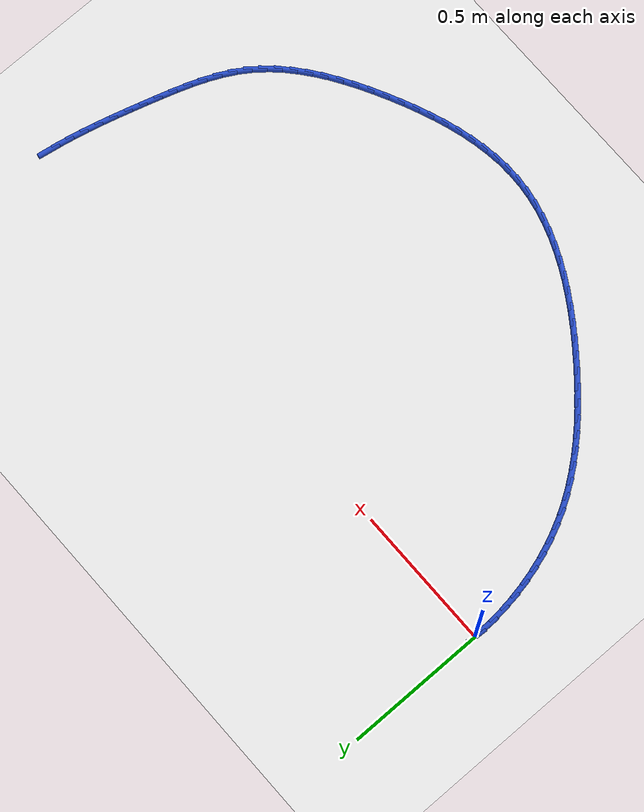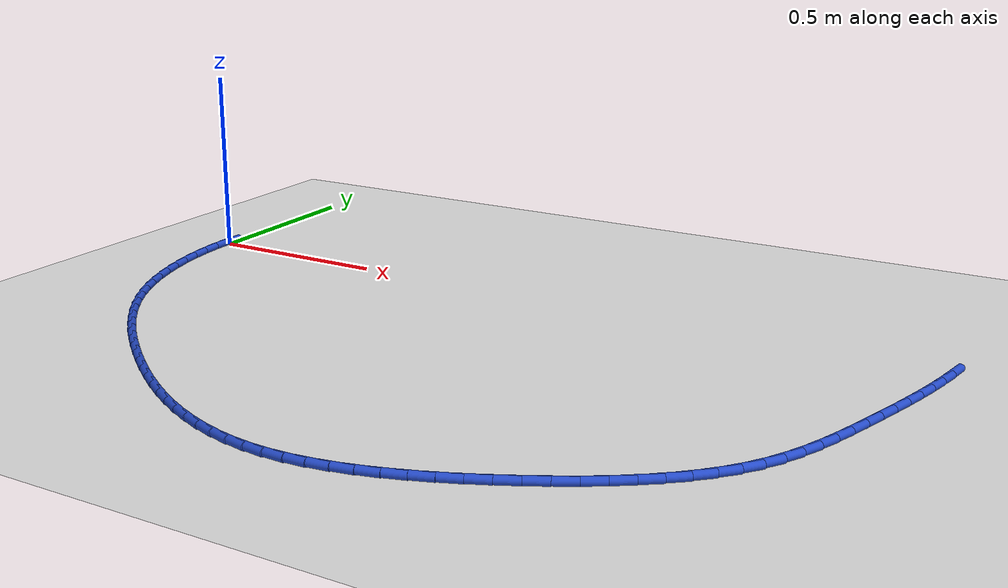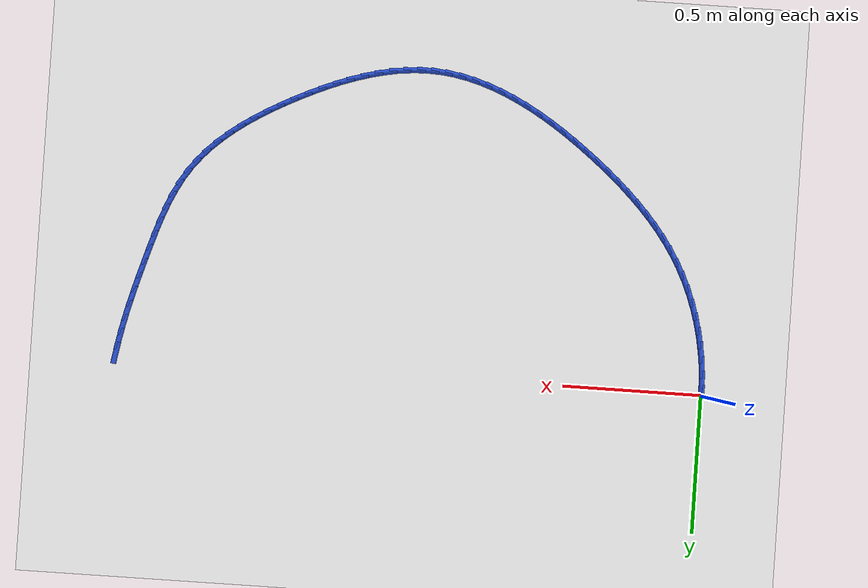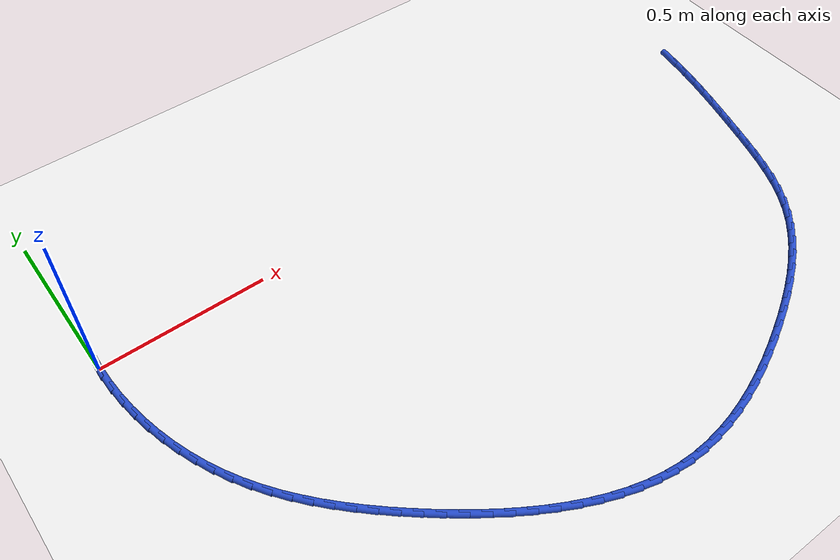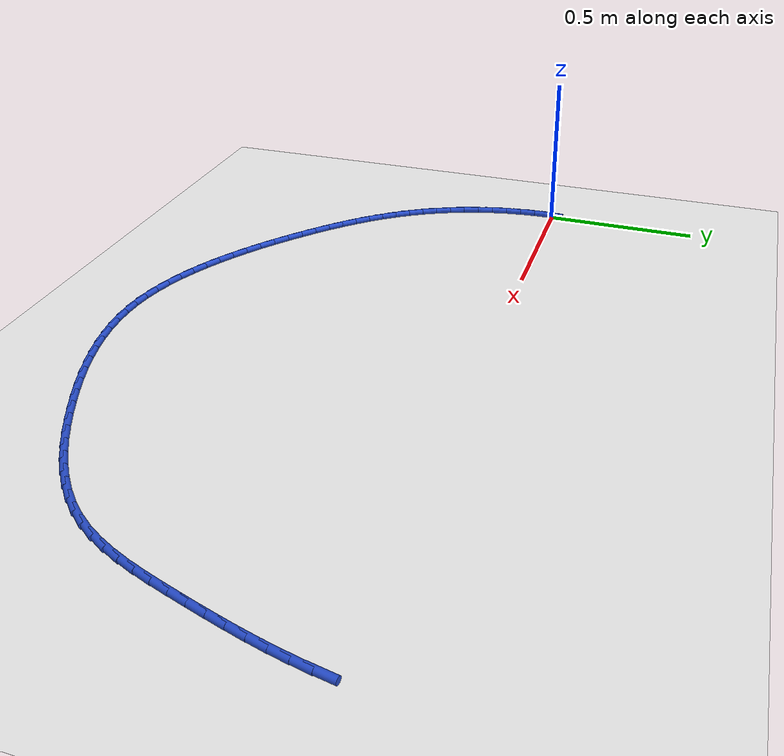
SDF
<sdf version="1.6">
 <world name="default">
  <model name="ground_plane">
   <static>1</static>
   <link name="link">
    <collision name="collision">
     <geometry><plane><normal>0 0 1</normal><size>100 100</size></plane></geometry>
     <surface><friction><ode><mu>100</mu><mu2>50</mu2></ode></friction></surface>
    </collision>
    <visual name="visual">
     <cast_shadows>0</cast_shadows>
     <geometry><plane><normal>0 0 1</normal><size>100 100</size></plane></geometry>
     <material>
      <script><uri>file://media/materials/scripts/gazebo.material</uri><name>Gazebo/WhiteGlow</name></script>
     </material>
    </visual>
   </link>
  </model>
  <model name="line">
   <link name="link_0">
    <pose>-6.938893903907228e-18 1.249000902703301e-16 0.01 0 1.57 1.5296847770159567</pose>
    <collision name="collision">
     <geometry><cylinder><radius>0.01</radius><length>0.08</length></cylinder></geometry>
    </collision>
    <visual name="visual">
     <material>
      <script><name>Gazebo/Blue</name><uri>file://media/materials/scripts/gazebo.material</uri></script>
     </material>
     <geometry><cylinder><radius>0.01</radius><length>0.08</length></cylinder></geometry>
    </visual>
   </link>
   <link name="link_66">
    <pose>2.124496665569303 -0.014717996164324471 0.01 0 1.57 1.4017220841148144</pose>
    <collision name="collision">
     <geometry><cylinder><radius>0.01</radius><length>0.08</length></cylinder></geometry>
    </collision>
    <visual name="visual">
     <material>
      <script><name>Gazebo/Blue</name><uri>file://media/materials/scripts/gazebo.material</uri></script>
     </material>
     <geometry><cylinder><radius>0.01</radius><length>0.08</length></cylinder></geometry>
    </visual>
   </link>
   <link name="link_67">
    <pose>2.1156268221675774 -0.06667838751531235 0.01 0 1.57 1.3705863358991872</pose>
    <collision name="collision">
     <geometry><cylinder><radius>0.01</radius><length>0.08</length></cylinder></geometry>
    </collision>
    <visual name="visual">
     <material>
      <script><name>Gazebo/Blue</name><uri>file://media/materials/scripts/gazebo.material</uri></script>
     </material>
     <geometry><cylinder><radius>0.01</radius><length>0.08</length></cylinder></geometry>
    </visual>
   </link>
   <link name="link_68">
    <pose>2.1050665572871172 -0.11871768371414085 0.01 0 1.57 1.3442611788605574</pose>
    <collision name="collision">
     <geometry><cylinder><radius>0.01</radius><length>0.08</length></cylinder></geometry>
    </collision>
    <visual name="visual">
     <material>
      <script><name>Gazebo/Blue</name><uri>file://media/materials/scripts/gazebo.material</uri></script>
     </material>
     <geometry><cylinder><radius>0.01</radius><length>0.08</length></cylinder></geometry>
    </visual>
   </link>
   <link name="link_69">
    <pose>2.0930682671690564 -0.17077292172517017 0.01 0 1.57 1.3225292285515549</pose>
    <collision name="collision">
     <geometry><cylinder><radius>0.01</radius><length>0.08</length></cylinder></geometry>
    </collision>
    <visual name="visual">
     <material>
      <script><name>Gazebo/Blue</name><uri>file://media/materials/scripts/gazebo.material</uri></script>
     </material>
     <geometry><cylinder><radius>0.01</radius><length>0.08</length></cylinder></geometry>
    </visual>
   </link>
   <link name="link_70">
    <pose>2.079884348054531 -0.2227811385127602 0.01 0 1.57 1.305206387496214</pose>
    <collision name="collision">
     <geometry><cylinder><radius>0.01</radius><length>0.08</length></cylinder></geometry>
    </collision>
    <visual name="visual">
     <material>
      <script><name>Gazebo/Blue</name><uri>file://media/materials/scripts/gazebo.material</uri></script>
     </material>
     <geometry><cylinder><radius>0.01</radius><length>0.08</length></cylinder></geometry>
    </visual>
   </link>
   <link name="link_71">
    <pose>2.0657671961846766 -0.27467937104126916 0.01 0 1.57 1.292151103442545</pose>
    <collision name="collision">
     <geometry><cylinder><radius>0.01</radius><length>0.08</length></cylinder></geometry>
    </collision>
    <visual name="visual">
     <material>
      <script><name>Gazebo/Blue</name><uri>file://media/materials/scripts/gazebo.material</uri></script>
     </material>
     <geometry><cylinder><radius>0.01</radius><length>0.08</length></cylinder></geometry>
    </visual>
   </link>
   <link name="link_72">
    <pose>2.0509692078006267 -0.3264046562750569 0.01 0 1.57 1.2832709143984953</pose>
    <collision name="collision">
     <geometry><cylinder><radius>0.01</radius><length>0.08</length></cylinder></geometry>
    </collision>
    <visual name="visual">
     <material>
      <script><name>Gazebo/Blue</name><uri>file://media/materials/scripts/gazebo.material</uri></script>
     </material>
     <geometry><cylinder><radius>0.01</radius><length>0.08</length></cylinder></geometry>
    </visual>
   </link>
   <link name="link_73">
    <pose>2.0357427791435176 -0.3778940311784829 0.01 0 1.57 1.2760786887037612</pose>
    <collision name="collision">
     <geometry><cylinder><radius>0.01</radius><length>0.08</length></cylinder></geometry>
    </collision>
    <visual name="visual">
     <material>
      <script><name>Gazebo/Blue</name><uri>file://media/materials/scripts/gazebo.material</uri></script>
     </material>
     <geometry><cylinder><radius>0.01</radius><length>0.08</length></cylinder></geometry>
    </visual>
   </link>
   <link name="link_74">
    <pose>2.0202174661005916 -0.4290385328154918 0.01 0 1.57 1.2595797604115067</pose>
    <collision name="collision">
     <geometry><cylinder><radius>0.01</radius><length>0.08</length></cylinder></geometry>
    </collision>
    <visual name="visual">
     <material>
      <script><name>Gazebo/Blue</name><uri>file://media/materials/scripts/gazebo.material</uri></script>
     </material>
     <geometry><cylinder><radius>0.01</radius><length>0.08</length></cylinder></geometry>
    </visual>
   </link>
   <link name="link_75">
    <pose>2.0039775142845127 -0.47952499647487323 0.01 0 1.57 1.2303242992780765</pose>
    <collision name="collision">
     <geometry><cylinder><radius>0.01</radius><length>0.08</length></cylinder></geometry>
    </collision>
    <visual name="visual">
     <material>
      <script><name>Gazebo/Blue</name><uri>file://media/materials/scripts/gazebo.material</uri></script>
     </material>
     <geometry><cylinder><radius>0.01</radius><length>0.08</length></cylinder></geometry>
    </visual>
   </link>
   <link name="link_76">
    <pose>1.9864559058612035 -0.5289836139787847 0.01 0 1.57 1.187675611038601</pose>
    <collision name="collision">
     <geometry><cylinder><radius>0.01</radius><length>0.08</length></cylinder></geometry>
    </collision>
    <visual name="visual">
     <material>
      <script><name>Gazebo/Blue</name><uri>file://media/materials/scripts/gazebo.material</uri></script>
     </material>
     <geometry><cylinder><radius>0.01</radius><length>0.08</length></cylinder></geometry>
    </visual>
   </link>
   <link name="link_77">
    <pose>1.9670856172900475 -0.5770445750124642 0.01 0 1.57 1.1309392690471913</pose>
    <collision name="collision">
     <geometry><cylinder><radius>0.01</radius><length>0.08</length></cylinder></geometry>
    </collision>
    <visual name="visual">
     <material>
      <script><name>Gazebo/Blue</name><uri>file://media/materials/scripts/gazebo.material</uri></script>
     </material>
     <geometry><cylinder><radius>0.01</radius><length>0.08</length></cylinder></geometry>
    </visual>
   </link>
   <link name="link_78">
    <pose>1.945299625030425 -0.6233380692611487 0.01 0 1.57 1.0595973341296483</pose>
    <collision name="collision">
     <geometry><cylinder><radius>0.01</radius><length>0.08</length></cylinder></geometry>
    </collision>
    <visual name="visual">
     <material>
      <script><name>Gazebo/Blue</name><uri>file://media/materials/scripts/gazebo.material</uri></script>
     </material>
     <geometry><cylinder><radius>0.01</radius><length>0.08</length></cylinder></geometry>
    </visual>
   </link>
   <link name="link_79">
    <pose>1.9205309055417197 -0.6674942864100738 0.01 0 1.57 0.9740345447631718</pose>
    <collision name="collision">
     <geometry><cylinder><radius>0.01</radius><length>0.08</length></cylinder></geometry>
    </collision>
    <visual name="visual">
     <material>
      <script><name>Gazebo/Blue</name><uri>file://media/materials/scripts/gazebo.material</uri></script>
     </material>
     <geometry><cylinder><radius>0.01</radius><length>0.08</length></cylinder></geometry>
    </visual>
   </link>
   <link name="link_80">
    <pose>1.892228424097062 -0.7091527409933412 0.01 0 1.57 0.8848898140788163</pose>
    <collision name="collision">
     <geometry><cylinder><radius>0.01</radius><length>0.08</length></cylinder></geometry>
    </collision>
    <visual name="visual">
     <material>
      <script><name>Gazebo/Blue</name><uri>file://media/materials/scripts/gazebo.material</uri></script>
     </material>
     <geometry><cylinder><radius>0.01</radius><length>0.08</length></cylinder></geometry>
    </visual>
   </link>
   <link name="link_81">
    <pose>1.8602677138322739 -0.7482017265296851 0.01 0 1.57 0.8037039242392922</pose>
    <collision name="collision">
     <geometry><cylinder><radius>0.01</radius><length>0.08</length></cylinder></geometry>
    </collision>
    <visual name="visual">
     <material>
      <script><name>Gazebo/Blue</name><uri>file://media/materials/scripts/gazebo.material</uri></script>
     </material>
     <geometry><cylinder><radius>0.01</radius><length>0.08</length></cylinder></geometry>
    </visual>
   </link>
   <link name="link_82">
    <pose>1.8249863664012815 -0.784799014056023 0.01 0 1.57 0.7313637160034923</pose>
    <collision name="collision">
     <geometry><cylinder><radius>0.01</radius><length>0.08</length></cylinder></geometry>
    </collision>
    <visual name="visual">
     <material>
      <script><name>Gazebo/Blue</name><uri>file://media/materials/scripts/gazebo.material</uri></script>
     </material>
     <geometry><cylinder><radius>0.01</radius><length>0.08</length></cylinder></geometry>
    </visual>
   </link>
   <link name="link_83">
    <pose>1.7867450746182199 -0.8191158474554094 0.01 0 1.57 0.6677625997731812</pose>
    <collision name="collision">
     <geometry><cylinder><radius>0.01</radius><length>0.08</length></cylinder></geometry>
    </collision>
    <visual name="visual">
     <material>
      <script><name>Gazebo/Blue</name><uri>file://media/materials/scripts/gazebo.material</uri></script>
     </material>
     <geometry><cylinder><radius>0.01</radius><length>0.08</length></cylinder></geometry>
    </visual>
   </link>
   <link name="link_84">
    <pose>1.745904531297226 -0.8513234706108977 0.01 0 1.57 0.612504228666614</pose>
    <collision name="collision">
     <geometry><cylinder><radius>0.01</radius><length>0.08</length></cylinder></geometry>
    </collision>
    <visual name="visual">
     <material>
      <script><name>Gazebo/Blue</name><uri>file://media/materials/scripts/gazebo.material</uri></script>
     </material>
     <geometry><cylinder><radius>0.01</radius><length>0.08</length></cylinder></geometry>
    </visual>
   </link>
   <link name="link_85">
    <pose>1.702825429252435 -0.8815931274055427 0.01 0 1.57 0.5650485002494975</pose>
    <collision name="collision">
     <geometry><cylinder><radius>0.01</radius><length>0.08</length></cylinder></geometry>
    </collision>
    <visual name="visual">
     <material>
      <script><name>Gazebo/Blue</name><uri>file://media/materials/scripts/gazebo.material</uri></script>
     </material>
     <geometry><cylinder><radius>0.01</radius><length>0.08</length></cylinder></geometry>
    </visual>
   </link>
   <link name="link_86">
    <pose>1.6578684612979822 -0.9100960617223989 0.01 0 1.57 0.5248179153113586</pose>
    <collision name="collision">
     <geometry><cylinder><radius>0.01</radius><length>0.08</length></cylinder></geometry>
    </collision>
    <visual name="visual">
     <material>
      <script><name>Gazebo/Blue</name><uri>file://media/materials/scripts/gazebo.material</uri></script>
     </material>
     <geometry><cylinder><radius>0.01</radius><length>0.08</length></cylinder></geometry>
    </visual>
   </link>
   <link name="link_87">
    <pose>1.6113943202480037 -0.9370035174445194 0.01 0 1.57 0.49126769426235734</pose>
    <collision name="collision">
     <geometry><cylinder><radius>0.01</radius><length>0.08</length></cylinder></geometry>
    </collision>
    <visual name="visual">
     <material>
      <script><name>Gazebo/Blue</name><uri>file://media/materials/scripts/gazebo.material</uri></script>
     </material>
     <geometry><cylinder><radius>0.01</radius><length>0.08</length></cylinder></geometry>
    </visual>
   </link>
   <link name="link_88">
    <pose>1.5637636989166355 -0.9624867384549589 0.01 0 1.57 0.4637385969784313</pose>
    <collision name="collision">
     <geometry><cylinder><radius>0.01</radius><length>0.08</length></cylinder></geometry>
    </collision>
    <visual name="visual">
     <material>
      <script><name>Gazebo/Blue</name><uri>file://media/materials/scripts/gazebo.material</uri></script>
     </material>
     <geometry><cylinder><radius>0.01</radius><length>0.08</length></cylinder></geometry>
    </visual>
   </link>
   <link name="link_89">
    <pose>1.5153320895193652 -0.9867080517719585 0.01 0 1.57 0.4371687139014801</pose>
    <collision name="collision">
     <geometry><cylinder><radius>0.01</radius><length>0.08</length></cylinder></geometry>
    </collision>
    <visual name="visual">
     <material>
      <script><name>Gazebo/Blue</name><uri>file://media/materials/scripts/gazebo.material</uri></script>
     </material>
     <geometry><cylinder><radius>0.01</radius><length>0.08</length></cylinder></geometry>
    </visual>
   </link>
   <link name="link_90">
    <pose>1.4663265763441864 -1.0096096181967553 0.01 0 1.57 0.4063741657792068</pose>
    <collision name="collision">
     <geometry><cylinder><radius>0.01</radius><length>0.08</length></cylinder></geometry>
    </collision>
    <visual name="visual">
     <material>
      <script><name>Gazebo/Blue</name><uri>file://media/materials/scripts/gazebo.material</uri></script>
     </material>
     <geometry><cylinder><radius>0.01</radius><length>0.08</length></cylinder></geometry>
    </visual>
   </link>
   <link name="link_91">
    <pose>1.4168407513303443 -1.0309047146447088 0.01 0 1.57 0.3707858459080003</pose>
    <collision name="collision">
     <geometry><cylinder><radius>0.01</radius><length>0.08</length></cylinder></geometry>
    </collision>
    <visual name="visual">
     <material>
      <script><name>Gazebo/Blue</name><uri>file://media/materials/scripts/gazebo.material</uri></script>
     </material>
     <geometry><cylinder><radius>0.01</radius><length>0.08</length></cylinder></geometry>
    </visual>
   </link>
   <link name="link_92">
    <pose>1.3669619884534776 -1.0502959568083685 0.01 0 1.57 0.3300111230423298</pose>
    <collision name="collision">
     <geometry><cylinder><radius>0.01</radius><length>0.08</length></cylinder></geometry>
    </collision>
    <visual name="visual">
     <material>
      <script><name>Gazebo/Blue</name><uri>file://media/materials/scripts/gazebo.material</uri></script>
     </material>
     <geometry><cylinder><radius>0.01</radius><length>0.08</length></cylinder></geometry>
    </visual>
   </link>
   <link name="link_93">
    <pose>1.3167776616892213 -1.0674859603802849 0.01 0 1.57 0.28362307639051393</pose>
    <collision name="collision">
     <geometry><cylinder><radius>0.01</radius><length>0.08</length></cylinder></geometry>
    </collision>
    <visual name="visual">
     <material>
      <script><name>Gazebo/Blue</name><uri>file://media/materials/scripts/gazebo.material</uri></script>
     </material>
     <geometry><cylinder><radius>0.01</radius><length>0.08</length></cylinder></geometry>
    </visual>
   </link>
   <link name="link_94">
    <pose>1.2663751450132124 -1.0821773410530093 0.01 0 1.57 0.23118774837870748</pose>
    <collision name="collision">
     <geometry><cylinder><radius>0.01</radius><length>0.08</length></cylinder></geometry>
    </collision>
    <visual name="visual">
     <material>
      <script><name>Gazebo/Blue</name><uri>file://media/materials/scripts/gazebo.material</uri></script>
     </material>
     <geometry><cylinder><radius>0.01</radius><length>0.08</length></cylinder></geometry>
    </visual>
   </link>
   <link name="link_95">
    <pose>1.2158418124010886 -1.0940727145190916 0.01 0 1.57 0.17230636699587695</pose>
    <collision name="collision">
     <geometry><cylinder><radius>0.01</radius><length>0.08</length></cylinder></geometry>
    </collision>
    <visual name="visual">
     <material>
      <script><name>Gazebo/Blue</name><uri>file://media/materials/scripts/gazebo.material</uri></script>
     </material>
     <geometry><cylinder><radius>0.01</radius><length>0.08</length></cylinder></geometry>
    </visual>
   </link>
   <link name="link_96">
    <pose>1.1652650378284857 -1.102874696471082 0.01 0 1.57 0.10667645046449932</pose>
    <collision name="collision">
     <geometry><cylinder><radius>0.01</radius><length>0.08</length></cylinder></geometry>
    </collision>
    <visual name="visual">
     <material>
      <script><name>Gazebo/Blue</name><uri>file://media/materials/scripts/gazebo.material</uri></script>
     </material>
     <geometry><cylinder><radius>0.01</radius><length>0.08</length></cylinder></geometry>
    </visual>
   </link>
   <link name="link_97">
    <pose>1.1147321952710407 -1.1082859026015317 0.01 0 1.57 0.03417306977004375</pose>
    <collision name="collision">
     <geometry><cylinder><radius>0.01</radius><length>0.08</length></cylinder></geometry>
    </collision>
    <visual name="visual">
     <material>
      <script><name>Gazebo/Blue</name><uri>file://media/materials/scripts/gazebo.material</uri></script>
     </material>
     <geometry><cylinder><radius>0.01</radius><length>0.08</length></cylinder></geometry>
    </visual>
   </link>
   <link name="link_98">
    <pose>1.0643306587043906 -1.1100089486029905 0.01 0 1.57 -0.045005744505037054</pose>
    <collision name="collision">
     <geometry><cylinder><radius>0.01</radius><length>0.08</length></cylinder></geometry>
    </collision>
    <visual name="visual">
     <material>
      <script><name>Gazebo/Blue</name><uri>file://media/materials/scripts/gazebo.material</uri></script>
     </material>
     <geometry><cylinder><radius>0.01</radius><length>0.08</length></cylinder></geometry>
    </visual>
   </link>
   <link name="link_99">
    <pose>1.0141476913379233 -1.1077489006672316 0.01 0 1.57 -0.12640595078288297</pose>
    <collision name="collision">
     <geometry><cylinder><radius>0.01</radius><length>0.08</length></cylinder></geometry>
    </collision>
    <visual name="visual">
     <material>
      <script><name>Gazebo/Blue</name><uri>file://media/materials/scripts/gazebo.material</uri></script>
     </material>
     <geometry><cylinder><radius>0.01</radius><length>0.08</length></cylinder></geometry>
    </visual>
   </link>
   <link name="link_100">
    <pose>0.9642615896096739 -1.1014091982875107 0.01 0 1.57 -0.20261885655177997</pose>
    <collision name="collision">
     <geometry><cylinder><radius>0.01</radius><length>0.08</length></cylinder></geometry>
    </collision>
    <visual name="visual">
     <material>
      <script><name>Gazebo/Blue</name><uri>file://media/materials/scripts/gazebo.material</uri></script>
     </material>
     <geometry><cylinder><radius>0.01</radius><length>0.08</length></cylinder></geometry>
    </visual>
   </link>
   <link name="link_101">
    <pose>0.9147352217173491 -1.0912346023590092 0.01 0 1.57 -0.27266008546337417</pose>
    <collision name="collision">
     <geometry><cylinder><radius>0.01</radius><length>0.08</length></cylinder></geometry>
    </collision>
    <visual name="visual">
     <material>
      <script><name>Gazebo/Blue</name><uri>file://media/materials/scripts/gazebo.material</uri></script>
     </material>
     <geometry><cylinder><radius>0.01</radius><length>0.08</length></cylinder></geometry>
    </visual>
   </link>
   <link name="link_102">
    <pose>0.8656299322593168 -1.0775035806061395 0.01 0 1.57 -0.3365094830773206</pose>
    <collision name="collision">
     <geometry><cylinder><radius>0.01</radius><length>0.08</length></cylinder></geometry>
    </collision>
    <visual name="visual">
     <material>
      <script><name>Gazebo/Blue</name><uri>file://media/materials/scripts/gazebo.material</uri></script>
     </material>
     <geometry><cylinder><radius>0.01</radius><length>0.08</length></cylinder></geometry>
    </visual>
   </link>
   <link name="link_103">
    <pose>0.8170070658339476 -1.0604946007533145 0.01 0 1.57 -0.39435706521473174</pose>
    <collision name="collision">
     <geometry><cylinder><radius>0.01</radius><length>0.08</length></cylinder></geometry>
    </collision>
    <visual name="visual">
     <material>
      <script><name>Gazebo/Blue</name><uri>file://media/materials/scripts/gazebo.material</uri></script>
     </material>
     <geometry><cylinder><radius>0.01</radius><length>0.08</length></cylinder></geometry>
    </visual>
   </link>
   <link name="link_104">
    <pose>0.7689279670396093 -1.0404861305249464 0.01 0 1.57 -0.44652620100131085</pose>
    <collision name="collision">
     <geometry><cylinder><radius>0.01</radius><length>0.08</length></cylinder></geometry>
    </collision>
    <visual name="visual">
     <material>
      <script><name>Gazebo/Blue</name><uri>file://media/materials/scripts/gazebo.material</uri></script>
     </material>
     <geometry><cylinder><radius>0.01</radius><length>0.08</length></cylinder></geometry>
    </visual>
   </link>
   <link name="link_105">
    <pose>0.7214539804746708 -1.0177566376454477 0.01 0 1.57 -0.4934111211018473</pose>
    <collision name="collision">
     <geometry><cylinder><radius>0.01</radius><length>0.08</length></cylinder></geometry>
    </collision>
    <visual name="visual">
     <material>
      <script><name>Gazebo/Blue</name><uri>file://media/materials/scripts/gazebo.material</uri></script>
     </material>
     <geometry><cylinder><radius>0.01</radius><length>0.08</length></cylinder></geometry>
    </visual>
   </link>
   <link name="link_106">
    <pose>0.6746464507375016 -0.9925845898392314 0.01 0 1.57 -0.5354308261074697</pose>
    <collision name="collision">
     <geometry><cylinder><radius>0.01</radius><length>0.08</length></cylinder></geometry>
    </collision>
    <visual name="visual">
     <material>
      <script><name>Gazebo/Blue</name><uri>file://media/materials/scripts/gazebo.material</uri></script>
     </material>
     <geometry><cylinder><radius>0.01</radius><length>0.08</length></cylinder></geometry>
    </visual>
   </link>
   <link name="link_107">
    <pose>0.6285667224264693 -0.9652484548307089 0.01 0 1.57 -0.5729976968954913</pose>
    <collision name="collision">
     <geometry><cylinder><radius>0.01</radius><length>0.08</length></cylinder></geometry>
    </collision>
    <visual name="visual">
     <material>
      <script><name>Gazebo/Blue</name><uri>file://media/materials/scripts/gazebo.material</uri></script>
     </material>
     <geometry><cylinder><radius>0.01</radius><length>0.08</length></cylinder></geometry>
    </visual>
   </link>
   <link name="link_108">
    <pose>0.5832761401399443 -0.9360267003442937 0.01 0 1.57 -0.6064976262733066</pose>
    <collision name="collision">
     <geometry><cylinder><radius>0.01</radius><length>0.08</length></cylinder></geometry>
    </collision>
    <visual name="visual">
     <material>
      <script><name>Gazebo/Blue</name><uri>file://media/materials/scripts/gazebo.material</uri></script>
     </material>
     <geometry><cylinder><radius>0.01</radius><length>0.08</length></cylinder></geometry>
    </visual>
   </link>
   <link name="link_109">
    <pose>0.5388360484762951 -0.9051977941043984 0.01 0 1.57 -0.6362783561949883</pose>
    <collision name="collision">
     <geometry><cylinder><radius>0.01</radius><length>0.08</length></cylinder></geometry>
    </collision>
    <visual name="visual">
     <material>
      <script><name>Gazebo/Blue</name><uri>file://media/materials/scripts/gazebo.material</uri></script>
     </material>
     <geometry><cylinder><radius>0.01</radius><length>0.08</length></cylinder></geometry>
    </visual>
   </link>
   <link name="link_110">
    <pose>0.4953077920338894 -0.8730402038354343 0.01 0 1.57 -0.6626431711672638</pose>
    <collision name="collision">
     <geometry><cylinder><radius>0.01</radius><length>0.08</length></cylinder></geometry>
    </collision>
    <visual name="visual">
     <material>
      <script><name>Gazebo/Blue</name><uri>file://media/materials/scripts/gazebo.material</uri></script>
     </material>
     <geometry><cylinder><radius>0.01</radius><length>0.08</length></cylinder></geometry>
    </visual>
   </link>
   <link name="link_111">
    <pose>0.452752715411098 -0.8398323972618155 0.01 0 1.57 -0.6859954962066055</pose>
    <collision name="collision">
     <geometry><cylinder><radius>0.01</radius><length>0.08</length></cylinder></geometry>
    </collision>
    <visual name="visual">
     <material>
      <script><name>Gazebo/Blue</name><uri>file://media/materials/scripts/gazebo.material</uri></script>
     </material>
     <geometry><cylinder><radius>0.01</radius><length>0.08</length></cylinder></geometry>
    </visual>
   </link>
   <link name="link_112">
    <pose>0.4112342518876046 -0.8058443053506689 0.01 0 1.57 -0.7099040622018992</pose>
    <collision name="collision">
     <geometry><cylinder><radius>0.01</radius><length>0.08</length></cylinder></geometry>
    </collision>
    <visual name="visual">
     <material>
      <script><name>Gazebo/Blue</name><uri>file://media/materials/scripts/gazebo.material</uri></script>
     </material>
     <geometry><cylinder><radius>0.01</radius><length>0.08</length></cylinder></geometry>
    </visual>
   </link>
   <link name="link_113">
    <pose>0.37086346424781785 -0.7711511900603366 0.01 0 1.57 -0.737861367668114</pose>
    <collision name="collision">
     <geometry><cylinder><radius>0.01</radius><length>0.08</length></cylinder></geometry>
    </collision>
    <visual name="visual">
     <material>
      <script><name>Gazebo/Blue</name><uri>file://media/materials/scripts/gazebo.material</uri></script>
     </material>
     <geometry><cylinder><radius>0.01</radius><length>0.08</length></cylinder></geometry>
    </visual>
   </link>
   <link name="link_114">
    <pose>0.33179881801942146 -0.7356345711488049 0.01 0 1.57 -0.770128405143323</pose>
    <collision name="collision">
     <geometry><cylinder><radius>0.01</radius><length>0.08</length></cylinder></geometry>
    </collision>
    <visual name="visual">
     <material>
      <script><name>Gazebo/Blue</name><uri>file://media/materials/scripts/gazebo.material</uri></script>
     </material>
     <geometry><cylinder><radius>0.01</radius><length>0.08</length></cylinder></geometry>
    </visual>
   </link>
   <link name="link_115">
    <pose>0.2942008220588008 -0.6991676169797824 0.01 0 1.57 -0.806795769416897</pose>
    <collision name="collision">
     <geometry><cylinder><radius>0.01</radius><length>0.08</length></cylinder></geometry>
    </collision>
    <visual name="visual">
     <material>
      <script><name>Gazebo/Blue</name><uri>file://media/materials/scripts/gazebo.material</uri></script>
     </material>
     <geometry><cylinder><radius>0.01</radius><length>0.08</length></cylinder></geometry>
    </visual>
   </link>
   <link name="link_116">
    <pose>0.2582299852223432 -0.6616234959169802 0.01 0 1.57 -0.8479091001664505</pose>
    <collision name="collision">
     <geometry><cylinder><radius>0.01</radius><length>0.08</length></cylinder></geometry>
    </collision>
    <visual name="visual">
     <material>
      <script><name>Gazebo/Blue</name><uri>file://media/materials/scripts/gazebo.material</uri></script>
     </material>
     <geometry><cylinder><radius>0.01</radius><length>0.08</length></cylinder></geometry>
    </visual>
   </link>
   <link name="link_117">
    <pose>0.22404681636643392 -0.6228753763241079 0.01 0 1.57 -0.8934466128115962</pose>
    <collision name="collision">
     <geometry><cylinder><radius>0.01</radius><length>0.08</length></cylinder></geometry>
    </collision>
    <visual name="visual">
     <material>
      <script><name>Gazebo/Blue</name><uri>file://media/materials/scripts/gazebo.material</uri></script>
     </material>
     <geometry><cylinder><radius>0.01</radius><length>0.08</length></cylinder></geometry>
    </visual>
   </link>
   <link name="link_118">
    <pose>0.19181182434745866 -0.5827964265648745 0.01 0 1.57 -0.9432946461224935</pose>
    <collision name="collision">
     <geometry><cylinder><radius>0.01</radius><length>0.08</length></cylinder></geometry>
    </collision>
    <visual name="visual">
     <material>
      <script><name>Gazebo/Blue</name><uri>file://media/materials/scripts/gazebo.material</uri></script>
     </material>
     <geometry><cylinder><radius>0.01</radius><length>0.08</length></cylinder></geometry>
    </visual>
   </link>
   <link name="link_119">
    <pose>0.1616855180218043 -0.5412598150029914 0.01 0 1.57 -0.9972238335048336</pose>
    <collision name="collision">
     <geometry><cylinder><radius>0.01</radius><length>0.08</length></cylinder></geometry>
    </collision>
    <visual name="visual">
     <material>
      <script><name>Gazebo/Blue</name><uri>file://media/materials/scripts/gazebo.material</uri></script>
     </material>
     <geometry><cylinder><radius>0.01</radius><length>0.08</length></cylinder></geometry>
    </visual>
   </link>
   <link name="link_120">
    <pose>0.13382840624585643 -0.4981387100021675 0.01 0 1.57 -1.0548554325500445</pose>
    <collision name="collision">
     <geometry><cylinder><radius>0.01</radius><length>0.08</length></cylinder></geometry>
    </collision>
    <visual name="visual">
     <material>
      <script><name>Gazebo/Blue</name><uri>file://media/materials/scripts/gazebo.material</uri></script>
     </material>
     <geometry><cylinder><radius>0.01</radius><length>0.08</length></cylinder></geometry>
    </visual>
   </link>
   <link name="link_121">
    <pose>0.10840069108854475 -0.45330724014862134 0.01 0 1.57 -1.1140701418621828</pose>
    <collision name="collision">
     <geometry><cylinder><radius>0.01</radius><length>0.08</length></cylinder></geometry>
    </collision>
    <visual name="visual">
     <material>
      <script><name>Gazebo/Blue</name><uri>file://media/materials/scripts/gazebo.material</uri></script>
     </material>
     <geometry><cylinder><radius>0.01</radius><length>0.08</length></cylinder></geometry>
    </visual>
   </link>
   <link name="link_122">
    <pose>0.08552578787099864 -0.4067546738836129 0.01 0 1.57 -1.1716803792275103</pose>
    <collision name="collision">
     <geometry><cylinder><radius>0.01</radius><length>0.08</length></cylinder></geometry>
    </collision>
    <visual name="visual">
     <material>
      <script><name>Gazebo/Blue</name><uri>file://media/materials/scripts/gazebo.material</uri></script>
     </material>
     <geometry><cylinder><radius>0.01</radius><length>0.08</length></cylinder></geometry>
    </visual>
   </link>
   <link name="link_123">
    <pose>0.06525584580440826 -0.3586933374085588 0.01 0 1.57 -1.2277303022036816</pose>
    <collision name="collision">
     <geometry><cylinder><radius>0.01</radius><length>0.08</length></cylinder></geometry>
    </collision>
    <visual name="visual">
     <material>
      <script><name>Gazebo/Blue</name><uri>file://media/materials/scripts/gazebo.material</uri></script>
     </material>
     <geometry><cylinder><radius>0.01</radius><length>0.08</length></cylinder></geometry>
    </visual>
   </link>
   <link name="link_124">
    <pose>0.047634851036809346 -0.30936110672105643 0.01 0 1.57 -1.2826491703541358</pose>
    <collision name="collision">
     <geometry><cylinder><radius>0.01</radius><length>0.08</length></cylinder></geometry>
    </collision>
    <visual name="visual">
     <material>
      <script><name>Gazebo/Blue</name><uri>file://media/materials/scripts/gazebo.material</uri></script>
     </material>
     <geometry><cylinder><radius>0.01</radius><length>0.08</length></cylinder></geometry>
    </visual>
   </link>
   <link name="link_125">
    <pose>0.03270678971623676 -0.2589958578187014 0.01 0 1.57 -1.336866396901268</pose>
    <collision name="collision">
     <geometry><cylinder><radius>0.01</radius><length>0.08</length></cylinder></geometry>
    </collision>
    <visual name="visual">
     <material>
      <script><name>Gazebo/Blue</name><uri>file://media/materials/scripts/gazebo.material</uri></script>
     </material>
     <geometry><cylinder><radius>0.01</radius><length>0.08</length></cylinder></geometry>
    </visual>
   </link>
   <link name="link_126">
    <pose>0.02051564799072554 -0.20783546669908903 0.01 0 1.57 -1.3908113327123937</pose>
    <collision name="collision">
     <geometry><cylinder><radius>0.01</radius><length>0.08</length></cylinder></geometry>
    </collision>
    <visual name="visual">
     <material>
      <script><name>Gazebo/Blue</name><uri>file://media/materials/scripts/gazebo.material</uri></script>
     </material>
     <geometry><cylinder><radius>0.01</radius><length>0.08</length></cylinder></geometry>
    </visual>
   </link>
   <link name="link_127">
    <pose>0.011105412008311189 -0.15611780935981692 0.01 0 1.57 -1.4449144167311605</pose>
    <collision name="collision">
     <geometry><cylinder><radius>0.01</radius><length>0.08</length></cylinder></geometry>
    </collision>
    <visual name="visual">
     <material>
      <script><name>Gazebo/Blue</name><uri>file://media/materials/scripts/gazebo.material</uri></script>
     </material>
     <geometry><cylinder><radius>0.01</radius><length>0.08</length></cylinder></geometry>
    </visual>
   </link>
   <link name="link_128">
    <pose>0.004520067917028712 -0.10408076179848072 0.01 0 1.57 -1.4996089055016544</pose>
    <collision name="collision">
     <geometry><cylinder><radius>0.01</radius><length>0.08</length></cylinder></geometry>
    </collision>
    <visual name="visual">
     <material>
      <script><name>Gazebo/Blue</name><uri>file://media/materials/scripts/gazebo.material</uri></script>
     </material>
     <geometry><cylinder><radius>0.01</radius><length>0.08</length></cylinder></geometry>
    </visual>
   </link>
   <link name="link_129">
    <pose>0.0008036018649132497 -0.051962200012676374 0.01 0 1.57 -1.555332435580245</pose>
    <collision name="collision">
     <geometry><cylinder><radius>0.01</radius><length>0.08</length></cylinder></geometry>
    </collision>
    <visual name="visual">
     <material>
      <script><name>Gazebo/Blue</name><uri>file://media/materials/scripts/gazebo.material</uri></script>
     </material>
     <geometry><cylinder><radius>0.01</radius><length>0.08</length></cylinder></geometry>
    </visual>
   </link>
   <link name="link_130">
    <pose>3.469446951953614e-18 -1.249000902703301e-16 0.01 0 1.57 1.5290650217447155</pose>
    <collision name="collision">
     <geometry><cylinder><radius>0.01</radius><length>0.08</length></cylinder></geometry>
    </collision>
    <visual name="visual">
     <material>
      <script><name>Gazebo/Blue</name><uri>file://media/materials/scripts/gazebo.material</uri></script>
     </material>
     <geometry><cylinder><radius>0.01</radius><length>0.08</length></cylinder></geometry>
    </visual>
   </link>
  </model>
 </world>
</sdf>
